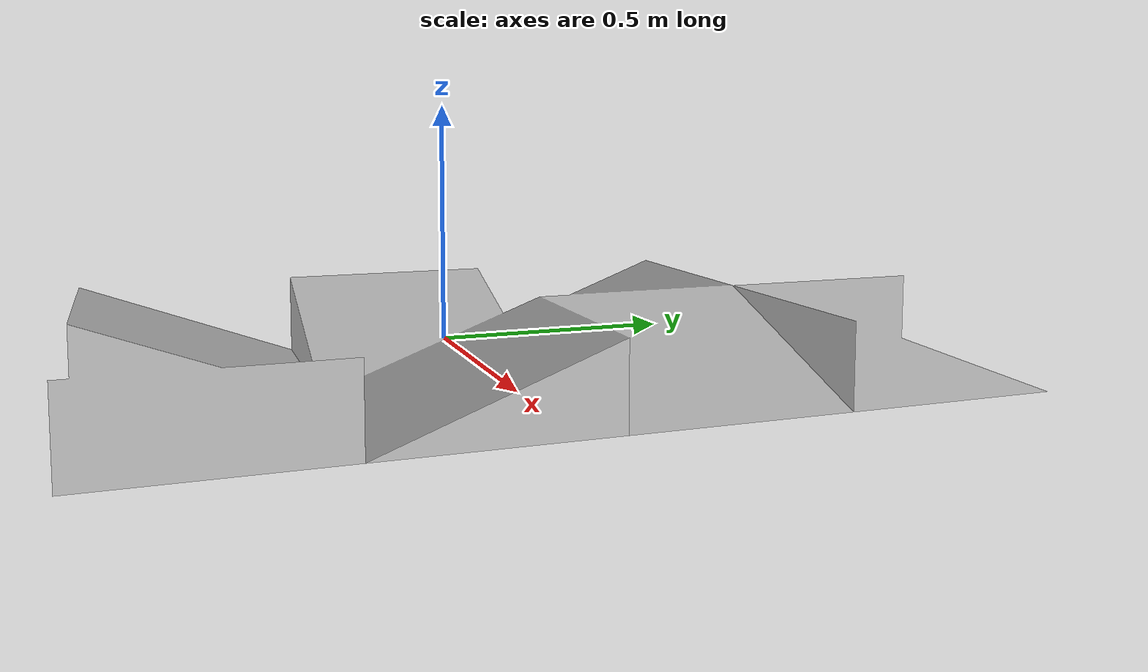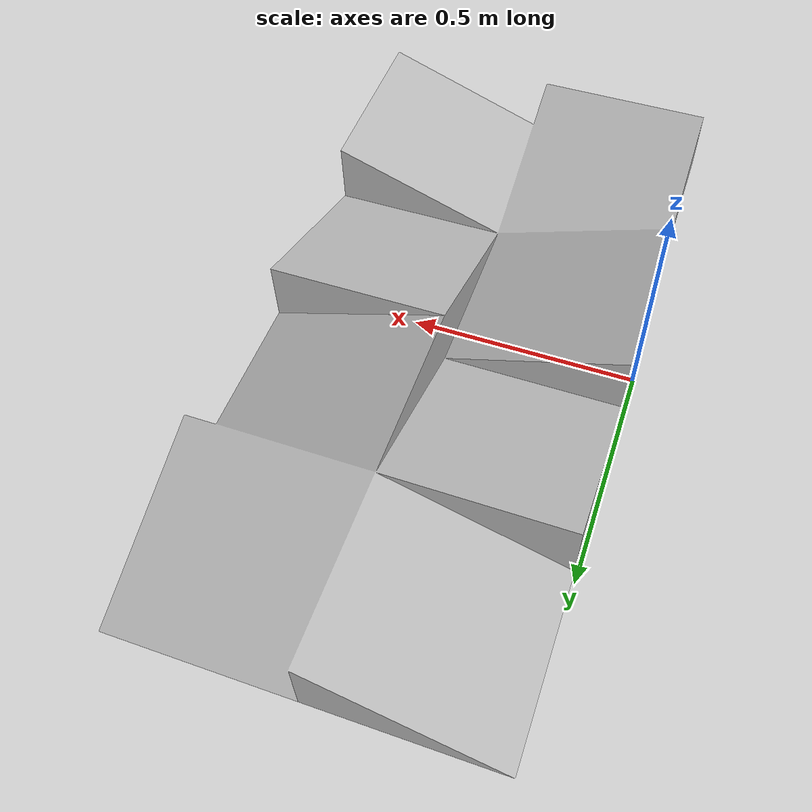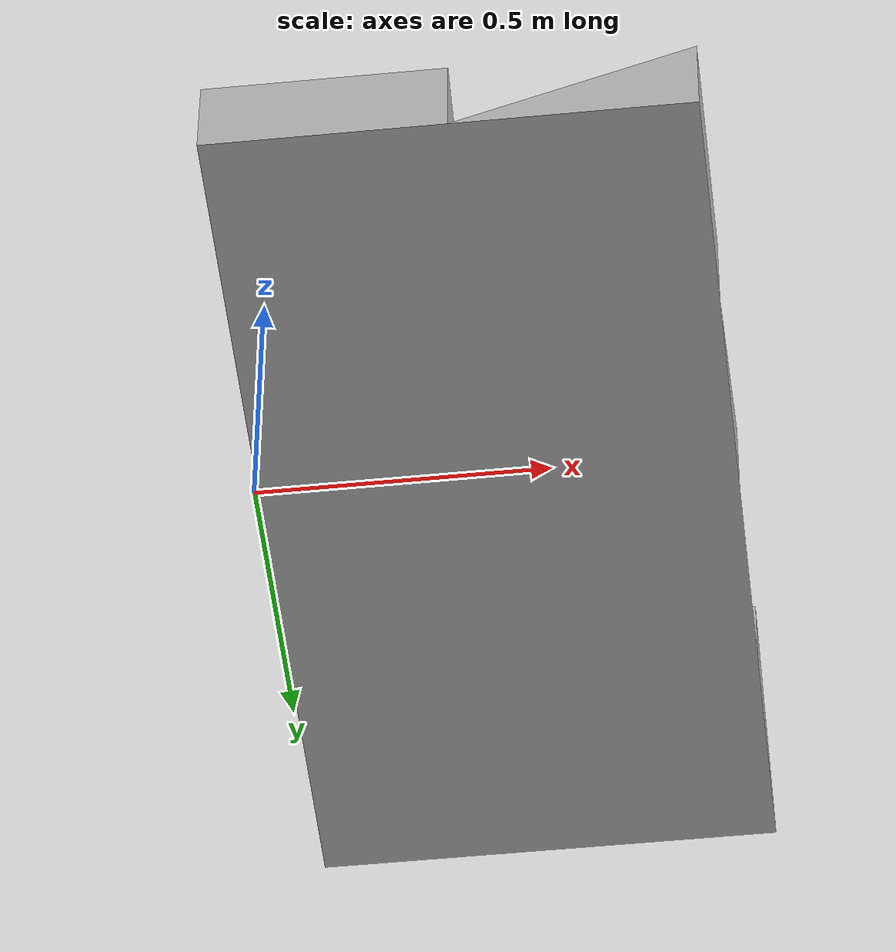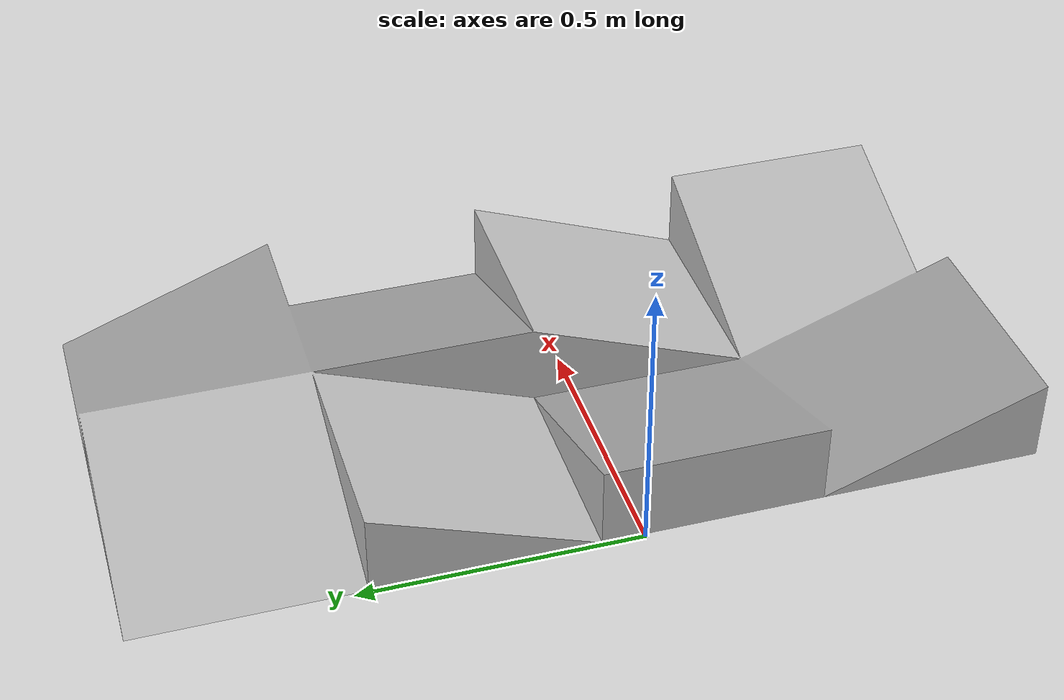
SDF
<?xml version="1.0" ?>
<sdf version="1.4">
	<model name="challenge_set_of_ramps">
		<static>true</static>
		<link name="link">
			<pose>0 0 0 0 0 0</pose>
			<collision name="collision">
				<geometry>
					<mesh>
						<uri>model://challenge_set_of_ramps/mesh/set_of_ramps.stl</uri>
						<scale>0.01 0.01 0.01</scale>
					</mesh>
				</geometry>
			</collision>
			<visual name="visual">
				<geometry>
					<mesh>
						<uri>model://challenge_set_of_ramps/mesh/set_of_ramps.stl</uri>
						<scale>0.01 0.01 0.01</scale>
					</mesh>
				</geometry>
			</visual>
		</link>
	</model>
</sdf>
